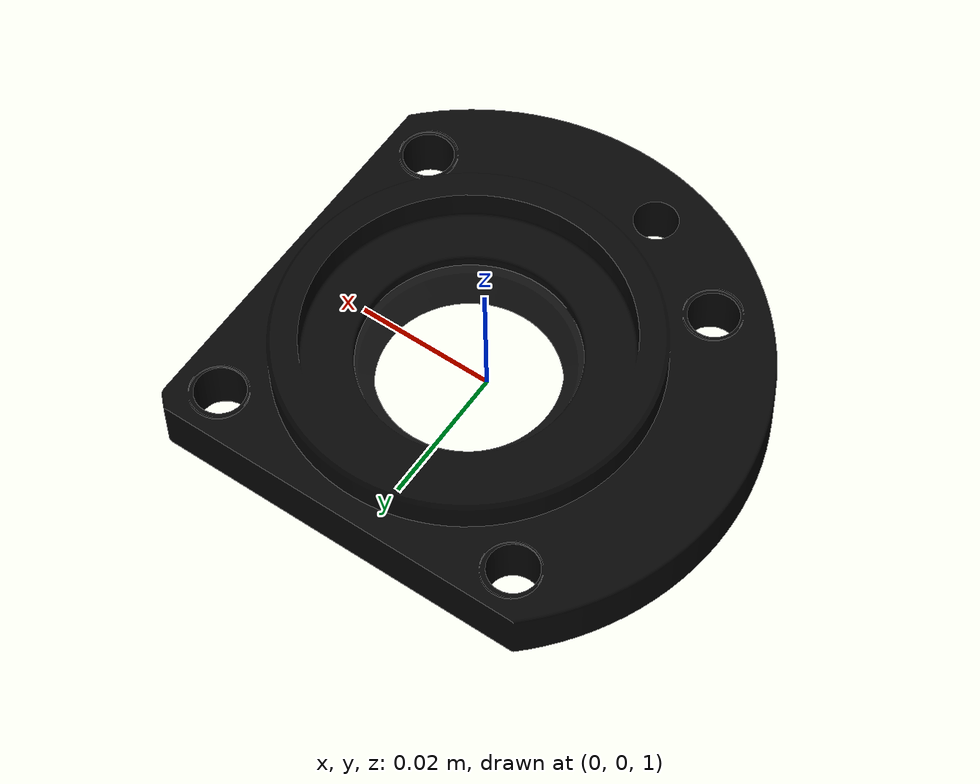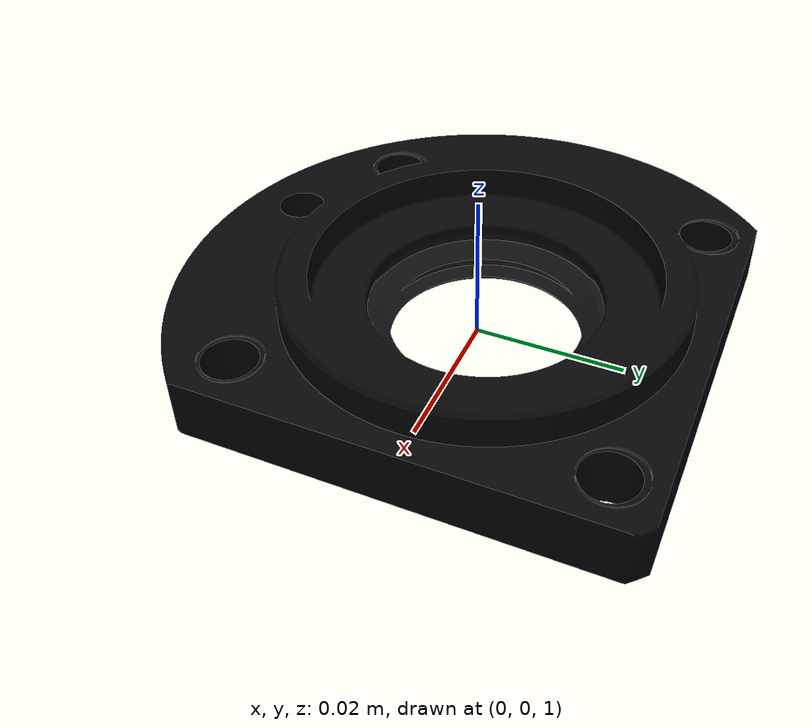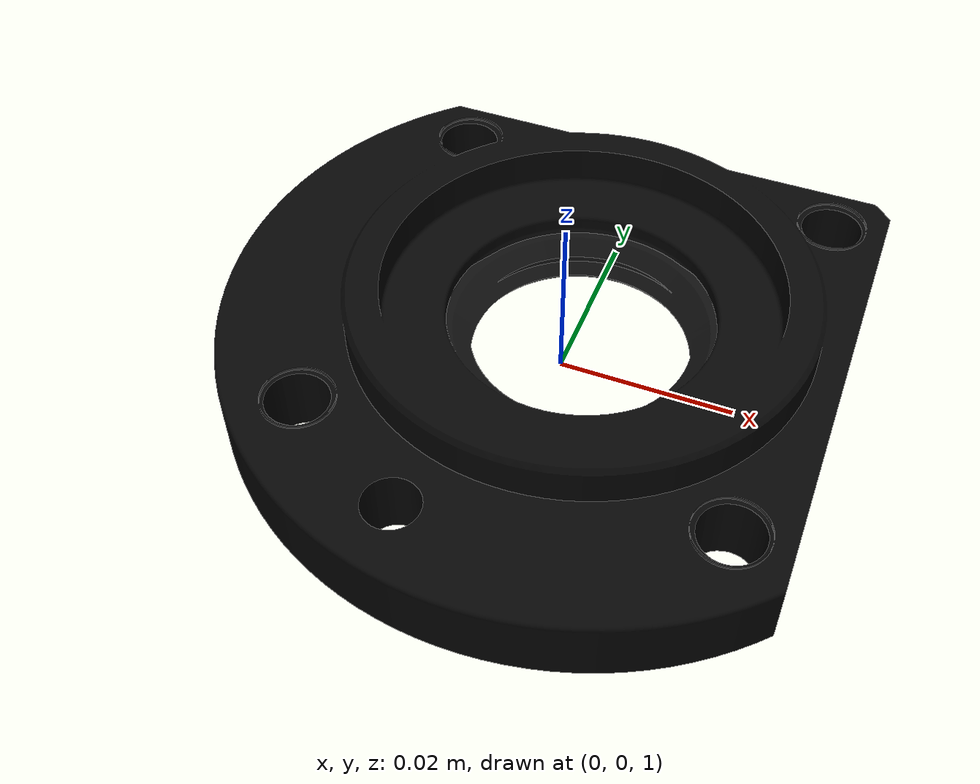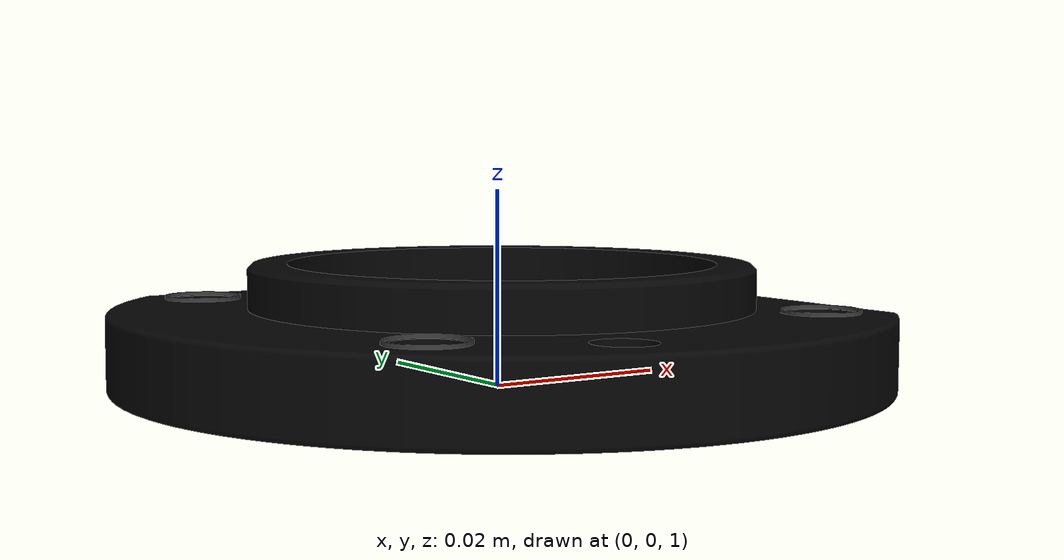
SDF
<?xml version='1.0'?>
<sdf version="1.5">
  <model name="nesnemodel">
    <pose>0 0 1 0 0 0</pose>
    <static>0</static>
    <link name="link">
      <inertial>
        <mass>10.0</mass>
        </inertial>
      <collision name="collision">
        <geometry>
          <mesh>
            <uri>model://nesnemodel/meshes/nesnemodel.dae</uri>
          </mesh>
        </geometry>
      </collision>
      <visual name="visual">
        <pose frame=''> 0 0 0 0 0 0</pose>
        <geometry>
          <mesh>
            <uri>model://nesnemodel/meshes/nesnemodel.dae</uri>
          </mesh>
        </geometry>
      </visual>
    </link>
  </model>
</sdf>
